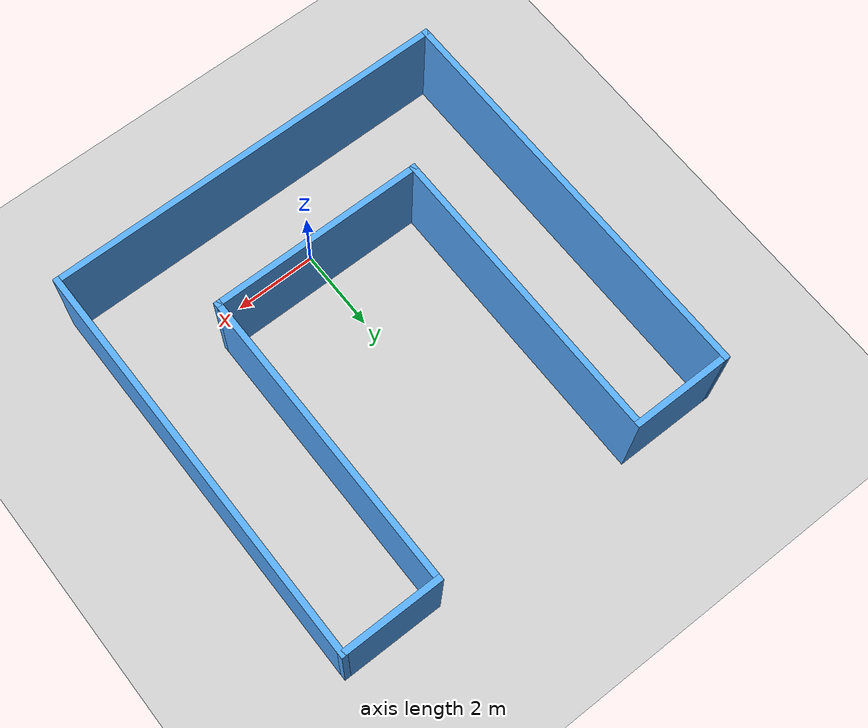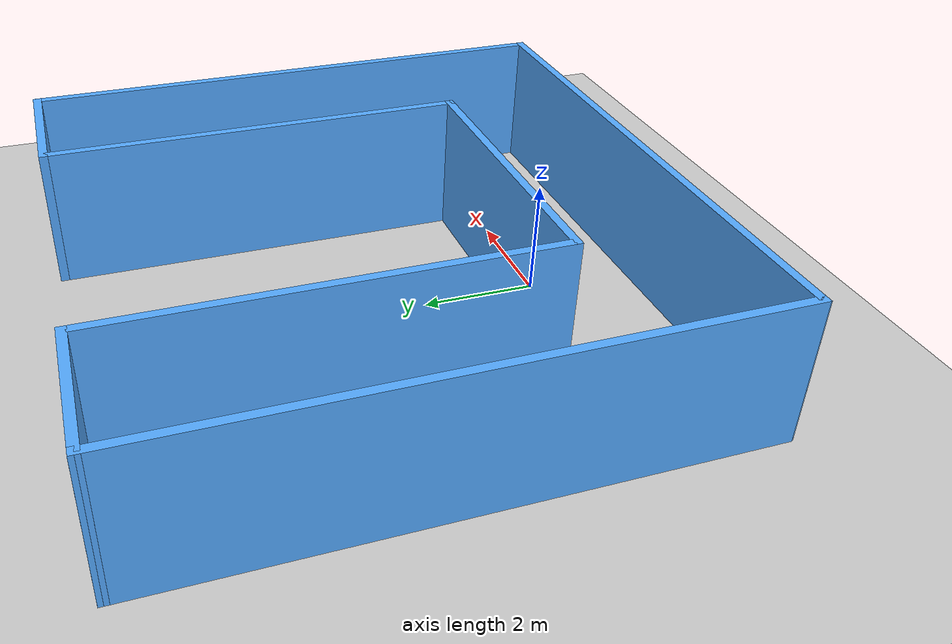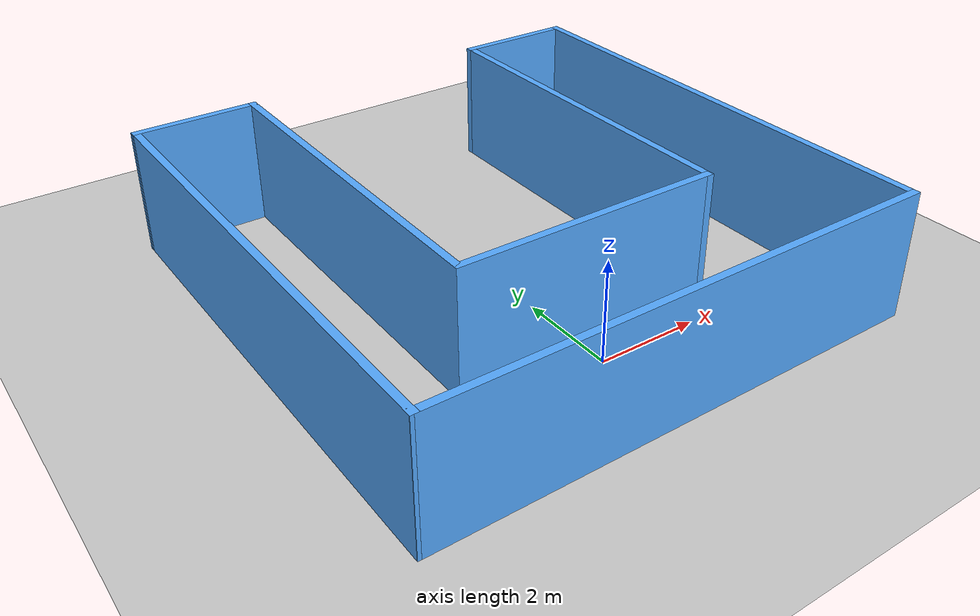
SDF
<sdf version="1.6">
 <world name="default">
  <light name="sun" type="directional">
   <pose>0 0 10 0 -0 0</pose>
   <diffuse>0.8 0.8 0.8 1</diffuse>
   <specular>0.2 0.2 0.2 1</specular>
   <attenuation>
    <range>1000</range>
    <constant>0.9</constant>
    <linear>0.01</linear>
    <quadratic>0.001</quadratic>
   </attenuation>
   <direction>-0.5 0.1 -0.9</direction>
  </light>
  <model name="ground_plane">
   <static>1</static>
   <link name="link">
    <collision name="collision">
     <geometry><plane><normal>0 0 1</normal><size>100 100</size></plane></geometry>
     <surface>
      <contact><collide_bitmask>65535</collide_bitmask></contact>
      <friction><ode><mu>100</mu><mu2>50</mu2></ode></friction>
     </surface>
    </collision>
    <visual name="visual">
     <cast_shadows>0</cast_shadows>
     <geometry><plane><normal>0 0 1</normal><size>100 100</size></plane></geometry>
     <material>
      <script><uri>file://media/materials/scripts/gazebo.material</uri><name>Gazebo/Grey</name></script>
     </material>
    </visual>
   </link>
  </model>
  <gravity>0 0 -9.8</gravity>
  <magnetic_field>6e-06 2.3e-05 -4.2e-05</magnetic_field>
  <atmosphere type="adiabatic"/>
  <physics name="default_physics" default="0" type="ode">
   <max_step_size>0.001</max_step_size>
   <real_time_factor>1</real_time_factor>
   <real_time_update_rate>1000</real_time_update_rate>
  </physics>
  <scene><ambient>0.4 0.4 0.4 1</ambient><background>0.7 0.7 0.7 1</background><shadows>1</shadows></scene>
  <spherical_coordinates>
   <surface_model>EARTH_WGS84</surface_model>
   <latitude_deg>0</latitude_deg>
   <longitude_deg>0</longitude_deg>
   <elevation>0</elevation>
   <heading_deg>0</heading_deg>
  </spherical_coordinates>
  <model name="Myworld">
   <pose>0.136696 3.03977 0 0 -0 0</pose>
   <link name="Wall_12">
    <collision name="Wall_12_Collision">
     <geometry><box><size>10 0.15 2.5</size></box></geometry>
     <pose>0 0 1.25 0 -0 0</pose>
    </collision>
    <visual name="Wall_12_Visual">
     <pose>0 0 1.25 0 -0 0</pose>
     <geometry><box><size>10 0.15 2.5</size></box></geometry>
     <material>
      <script><uri>file://media/materials/scripts/gazebo.material</uri><name>Gazebo/Grey</name></script>
      <ambient>0.333333 0.666667 1 1</ambient>
     </material>
     <meta><layer>0</layer></meta>
    </visual>
    <pose>0.015499 -4.92502 0 0 0 -4e-06</pose>
   </link>
   <link name="Wall_14">
    <collision name="Wall_14_Collision">
     <geometry><box><size>10 0.15 2.5</size></box></geometry>
     <pose>0 0 1.25 0 -0 0</pose>
    </collision>
    <visual name="Wall_14_Visual">
     <pose>0 0 1.25 0 -0 0</pose>
     <geometry><box><size>10 0.15 2.5</size></box></geometry>
     <material>
      <script><uri>file://media/materials/scripts/gazebo.material</uri><name>Gazebo/Grey</name></script>
      <ambient>0.333333 0.666667 1 1</ambient>
     </material>
     <meta><layer>0</layer></meta>
    </visual>
    <pose>4.94069 -3.8e-05 0 0 -0 1.5708</pose>
   </link>
   <link name="Wall_17">
    <collision name="Wall_17_Collision">
     <geometry><box><size>2.5 0.15 2.5</size></box></geometry>
     <pose>0 0 1.25 0 -0 0</pose>
    </collision>
    <visual name="Wall_17_Visual">
     <pose>0 0 1.25 0 -0 0</pose>
     <geometry><box><size>2.5 0.15 2.5</size></box></geometry>
     <material>
      <script><uri>file://media/materials/scripts/gazebo.material</uri><name>Gazebo/Grey</name></script>
      <ambient>0.333333 0.666667 1 1</ambient>
     </material>
     <meta><layer>0</layer></meta>
    </visual>
    <pose>-3.76545 4.925 0 0 -0 0</pose>
   </link>
   <link name="Wall_19">
    <collision name="Wall_19_Collision">
     <geometry><box><size>2.5 0.15 2.5</size></box></geometry>
     <pose>0 0 1.25 0 -0 0</pose>
    </collision>
    <visual name="Wall_19_Visual">
     <pose>0 0 1.25 0 -0 0</pose>
     <geometry><box><size>2.5 0.15 2.5</size></box></geometry>
     <material>
      <script><uri>file://media/materials/scripts/gazebo.material</uri><name>Gazebo/Grey</name></script>
      <ambient>0.333333 0.666667 1 1</ambient>
     </material>
     <meta><layer>0</layer></meta>
    </visual>
    <pose>3.76569 4.92496 0 0 -0 3.14159</pose>
   </link>
   <link name="Wall_21">
    <collision name="Wall_21_Collision">
     <geometry><box><size>7.5 0.15 2.5</size></box></geometry>
     <pose>0 0 1.25 0 -0 0</pose>
    </collision>
    <visual name="Wall_21_Visual">
     <pose>0 0 1.25 0 -0 0</pose>
     <geometry><box><size>7.5 0.15 2.5</size></box></geometry>
     <material>
      <script><uri>file://media/materials/scripts/gazebo.material</uri><name>Gazebo/Grey</name></script>
      <ambient>0.333333 0.666667 1 1</ambient>
     </material>
     <meta><layer>0</layer></meta>
    </visual>
    <pose>-2.59045 1.25 0 0 0 -1.5708</pose>
   </link>
   <link name="Wall_23">
    <collision name="Wall_23_Collision">
     <geometry><box><size>7.5 0.15 2.5</size></box></geometry>
     <pose>0 0 1.25 0 -0 0</pose>
    </collision>
    <visual name="Wall_23_Visual">
     <pose>0 0 1.25 0 -0 0</pose>
     <geometry><box><size>7.5 0.15 2.5</size></box></geometry>
     <material>
      <script><uri>file://media/materials/scripts/gazebo.material</uri><name>Gazebo/Grey</name></script>
      <ambient>0.333333 0.666667 1 1</ambient>
     </material>
     <meta><layer>0</layer></meta>
    </visual>
    <pose>2.59069 1.24996 0 0 0 -1.5708</pose>
   </link>
   <link name="Wall_25">
    <collision name="Wall_25_Collision">
     <geometry><box><size>5.33114 0.15 2.5</size></box></geometry>
     <pose>0 0 1.25 0 -0 0</pose>
    </collision>
    <visual name="Wall_25_Visual">
     <pose>0 0 1.25 0 -0 0</pose>
     <geometry><box><size>5.33114 0.15 2.5</size></box></geometry>
     <material>
      <script><uri>file://media/materials/scripts/gazebo.material</uri><name>Gazebo/Grey</name></script>
      <ambient>0.333333 0.666667 1 1</ambient>
     </material>
     <meta><layer>0</layer></meta>
    </visual>
    <pose>0.000117 -2.42502 0 0 0 -7e-06</pose>
   </link>
   <link name="Wall_9">
    <collision name="Wall_9_Collision">
     <geometry><box><size>10 0.15 2.5</size></box></geometry>
     <pose>0 0 1.25 0 -0 0</pose>
    </collision>
    <visual name="Wall_9_Visual">
     <pose>0 0 1.25 0 -0 0</pose>
     <geometry><box><size>10 0.15 2.5</size></box></geometry>
     <material>
      <script><uri>file://media/materials/scripts/gazebo.material</uri><name>Gazebo/Grey</name></script>
      <ambient>0.333333 0.666667 1 1</ambient>
     </material>
     <meta><layer>0</layer></meta>
    </visual>
    <pose>-4.92507 0 0 0 -0 1.57392</pose>
   </link>
   <static>1</static>
  </model>
 </world>
</sdf>
